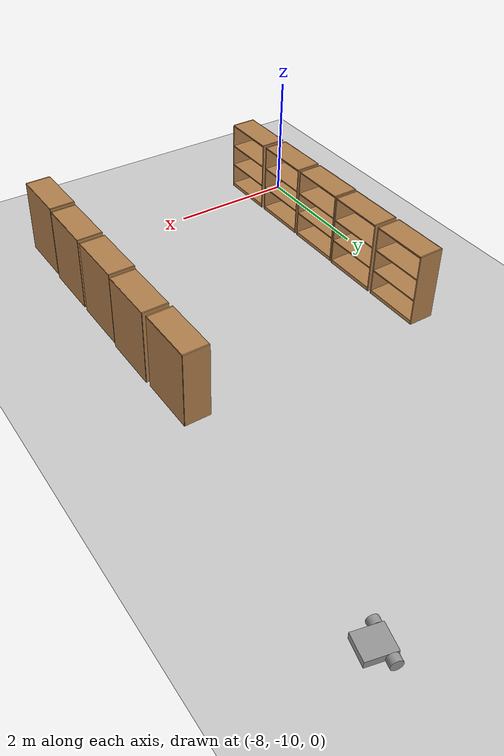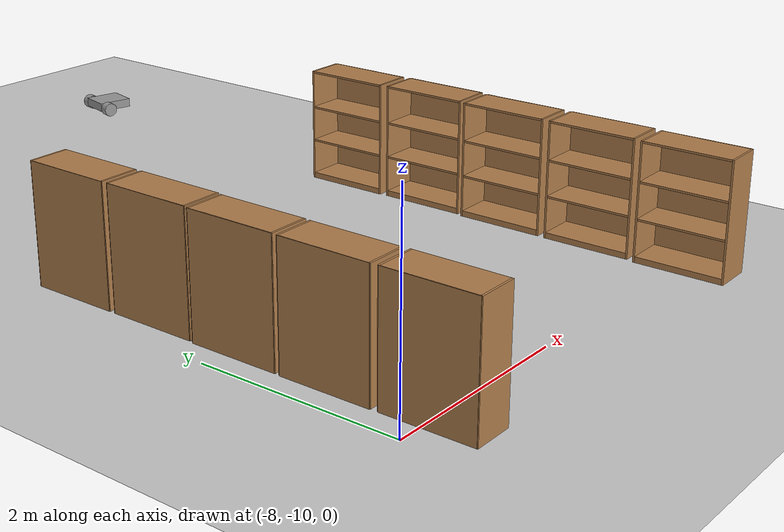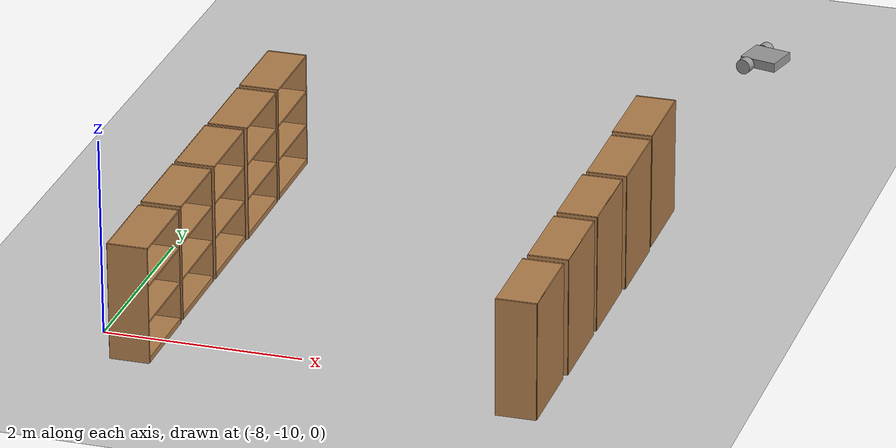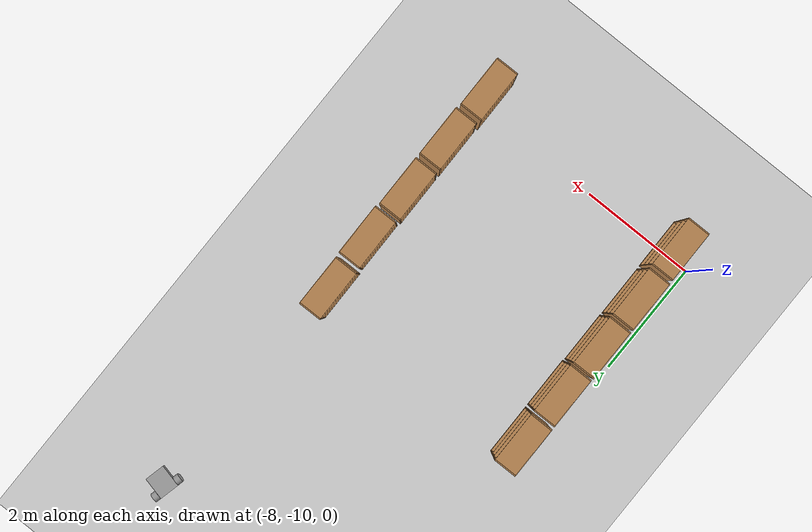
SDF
<sdf version="1.6">
 <world name="default">
  <model name="ground_plane">
   <static>1</static>
   <link name="link">
    <collision name="collision">
     <geometry><plane><normal>0 0 1</normal><size>100 100</size></plane></geometry>
     <surface>
      <contact><collide_bitmask>65535</collide_bitmask></contact>
      <friction><ode><mu>100</mu><mu2>50</mu2></ode></friction>
     </surface>
    </collision>
    <visual name="visual">
     <cast_shadows>0</cast_shadows>
     <geometry><plane><normal>0 0 1</normal><size>100 100</size></plane></geometry>
     <material>
      <script><uri>file://media/materials/scripts/gazebo.material</uri><name>Gazebo/Grey</name></script>
     </material>
    </visual>
   </link>
  </model>
  <model name="CasterWheelRobot">
   <link name="link_2">
    <pose>0.03 0 0.025 0 -0 0</pose>
    <inertial>
     <mass>0.0155432</mass>
     <inertia>
      <ixx>0.0001924</ixx>
      <ixy>0</ixy>
      <ixz>0</ixz>
      <iyy>0.0002189</iyy>
      <iyz>0</iyz>
      <izz>0.00038243</izz>
     </inertia>
    </inertial>
    <visual name="visual">
     <geometry><box><size>0.4 0.35 0.1</size></box></geometry>
     <material>
      <lighting>1</lighting>
      <script><uri>file://media/materials/scripts/gazebo.material</uri><name>Gazebo/Grey</name></script>
      <shader type="pixel"><normal_map>__default__</normal_map></shader>
      <ambient>0.3 0.3 0.3 1</ambient>
      <diffuse>0.7 0.7 0.7 1</diffuse>
      <specular>0.01 0.01 0.01 1</specular>
      <emissive>0 0 0 1</emissive>
     </material>
    </visual>
    <collision name="collision">
     <geometry><box><size>0.4 0.35 0.1</size></box></geometry>
     <surface>
      <friction>
       <ode><mu>1</mu><mu2>1</mu2><fdir1>0 0 0</fdir1><slip1>0</slip1><slip2>0</slip2></ode>
       <torsional>
        <coefficient>1</coefficient>
        <patch_radius>0</patch_radius>
        <surface_radius>0</surface_radius>
        <use_patch_radius>1</use_patch_radius>
        <ode><slip>0</slip></ode>
       </torsional>
      </friction>
      <bounce><restitution_coefficient>0</restitution_coefficient><threshold>1e+06</threshold></bounce>
      <contact>
       <collide_without_contact>0</collide_without_contact>
       <collide_without_contact_bitmask>1</collide_without_contact_bitmask>
       <collide_bitmask>1</collide_bitmask>
       <ode>
        <soft_cfm>0</soft_cfm>
        <soft_erp>0.2</soft_erp>
        <kp>1e+13</kp>
        <kd>1</kd>
        <max_vel>0.01</max_vel>
        <min_depth>0</min_depth>
       </ode>
       <bullet>
        <split_impulse>1</split_impulse>
        <split_impulse_penetration_threshold>-0.01</split_impulse_penetration_threshold>
        <soft_cfm>0</soft_cfm>
        <soft_erp>0.2</soft_erp>
        <kp>1e+13</kp>
        <kd>1</kd>
       </bullet>
      </contact>
     </surface>
    </collision>
   </link>
   <link name="link_3">
    <pose>-0.09 -0.225013 0.005 1.5707 -0 0</pose>
    <inertial>
     <mass>1</mass>
     <inertia><ixx>0.145833</ixx><ixy>0</ixy><ixz>0</ixz><iyy>0.145833</iyy><iyz>0</iyz><izz>0.125</izz></inertia>
    </inertial>
    <visual name="visual">
     <geometry><cylinder><radius>0.08</radius><length>0.1</length></cylinder></geometry>
     <material>
      <lighting>1</lighting>
      <script><uri>file://media/materials/scripts/gazebo.material</uri><name>Gazebo/Grey</name></script>
      <shader type="pixel"><normal_map>__default__</normal_map></shader>
      <ambient>0.3 0.3 0.3 1</ambient>
      <diffuse>0.7 0.7 0.7 1</diffuse>
      <specular>0.01 0.01 0.01 1</specular>
      <emissive>0 0 0 1</emissive>
     </material>
    </visual>
    <collision name="collision">
     <geometry><cylinder><radius>0.08</radius><length>0.1</length></cylinder></geometry>
     <surface>
      <friction>
       <ode><mu>1</mu><mu2>1</mu2><fdir1>0 0 0</fdir1><slip1>0</slip1><slip2>0</slip2></ode>
       <torsional>
        <coefficient>1</coefficient>
        <patch_radius>0</patch_radius>
        <surface_radius>0</surface_radius>
        <use_patch_radius>1</use_patch_radius>
        <ode><slip>0</slip></ode>
       </torsional>
      </friction>
      <bounce><restitution_coefficient>0</restitution_coefficient><threshold>1e+06</threshold></bounce>
      <contact>
       <collide_without_contact>0</collide_without_contact>
       <collide_without_contact_bitmask>1</collide_without_contact_bitmask>
       <collide_bitmask>1</collide_bitmask>
       <ode>
        <soft_cfm>0</soft_cfm>
        <soft_erp>0.2</soft_erp>
        <kp>1e+13</kp>
        <kd>1</kd>
        <max_vel>0.01</max_vel>
        <min_depth>0</min_depth>
       </ode>
       <bullet>
        <split_impulse>1</split_impulse>
        <split_impulse_penetration_threshold>-0.01</split_impulse_penetration_threshold>
        <soft_cfm>0</soft_cfm>
        <soft_erp>0.2</soft_erp>
        <kp>1e+13</kp>
        <kd>1</kd>
       </bullet>
      </contact>
     </surface>
    </collision>
   </link>
   <link name="link_3_clone">
    <pose>-0.09 0.225008 0.005 -1.5707 0 0</pose>
    <inertial>
     <mass>1</mass>
     <inertia><ixx>0.145833</ixx><ixy>0</ixy><ixz>0</ixz><iyy>0.145833</iyy><iyz>0</iyz><izz>0.125</izz></inertia>
    </inertial>
    <visual name="visual">
     <geometry><cylinder><radius>0.08</radius><length>0.1</length></cylinder></geometry>
     <material>
      <lighting>1</lighting>
      <script><uri>file://media/materials/scripts/gazebo.material</uri><name>Gazebo/Grey</name></script>
      <shader type="pixel"><normal_map>__default__</normal_map></shader>
      <ambient>0.3 0.3 0.3 1</ambient>
      <diffuse>0.7 0.7 0.7 1</diffuse>
      <specular>0.01 0.01 0.01 1</specular>
      <emissive>0 0 0 1</emissive>
     </material>
    </visual>
    <collision name="collision">
     <geometry><cylinder><radius>0.08</radius><length>0.1</length></cylinder></geometry>
     <surface>
      <friction>
       <ode><mu>1</mu><mu2>1</mu2><fdir1>0 0 0</fdir1><slip1>0</slip1><slip2>0</slip2></ode>
       <torsional>
        <coefficient>1</coefficient>
        <patch_radius>0</patch_radius>
        <surface_radius>0</surface_radius>
        <use_patch_radius>1</use_patch_radius>
        <ode><slip>0</slip></ode>
       </torsional>
      </friction>
      <bounce><restitution_coefficient>0</restitution_coefficient><threshold>1e+06</threshold></bounce>
      <contact>
       <collide_without_contact>0</collide_without_contact>
       <collide_without_contact_bitmask>1</collide_without_contact_bitmask>
       <collide_bitmask>1</collide_bitmask>
       <ode>
        <soft_cfm>0</soft_cfm>
        <soft_erp>0.2</soft_erp>
        <kp>1e+13</kp>
        <kd>1</kd>
        <max_vel>0.01</max_vel>
        <min_depth>0</min_depth>
       </ode>
       <bullet>
        <split_impulse>1</split_impulse>
        <split_impulse_penetration_threshold>-0.01</split_impulse_penetration_threshold>
        <soft_cfm>0</soft_cfm>
        <soft_erp>0.2</soft_erp>
        <kp>1e+13</kp>
        <kd>1</kd>
       </bullet>
      </contact>
     </surface>
    </collision>
   </link>
   <link name="link_4">
    <pose>0.15 0 -0.035 0 -0 0</pose>
    <inertial>
     <mass>0.00336129</mass>
     <inertia>
      <ixx>7.54e-06</ixx>
      <ixy>0</ixy>
      <ixz>0</ixz>
      <iyy>7.54e-06</iyy>
      <iyz>0</iyz>
      <izz>7.54e-06</izz>
     </inertia>
    </inertial>
    <visual name="visual">
     <geometry><sphere><radius>0.04</radius></sphere></geometry>
     <material>
      <lighting>1</lighting>
      <script><uri>file://media/materials/scripts/gazebo.material</uri><name>Gazebo/Grey</name></script>
      <shader type="pixel"><normal_map>__default__</normal_map></shader>
      <ambient>0.3 0.3 0.3 1</ambient>
      <diffuse>0.7 0.7 0.7 1</diffuse>
      <specular>0.01 0.01 0.01 1</specular>
      <emissive>0 0 0 1</emissive>
     </material>
    </visual>
    <collision name="collision">
     <geometry><sphere><radius>0.04</radius></sphere></geometry>
     <surface>
      <friction>
       <ode><mu>1</mu><mu2>1</mu2><fdir1>0 0 0</fdir1><slip1>0</slip1><slip2>0</slip2></ode>
       <torsional>
        <coefficient>1</coefficient>
        <patch_radius>0</patch_radius>
        <surface_radius>0</surface_radius>
        <use_patch_radius>1</use_patch_radius>
        <ode><slip>0</slip></ode>
       </torsional>
      </friction>
      <bounce><restitution_coefficient>0</restitution_coefficient><threshold>1e+06</threshold></bounce>
      <contact>
       <collide_without_contact>0</collide_without_contact>
       <collide_without_contact_bitmask>1</collide_without_contact_bitmask>
       <collide_bitmask>1</collide_bitmask>
       <ode>
        <soft_cfm>0</soft_cfm>
        <soft_erp>0.2</soft_erp>
        <kp>1e+13</kp>
        <kd>1</kd>
        <max_vel>0.01</max_vel>
        <min_depth>0</min_depth>
       </ode>
       <bullet>
        <split_impulse>1</split_impulse>
        <split_impulse_penetration_threshold>-0.01</split_impulse_penetration_threshold>
        <soft_cfm>0</soft_cfm>
        <soft_erp>0.2</soft_erp>
        <kp>1e+13</kp>
        <kd>1</kd>
       </bullet>
      </contact>
     </surface>
    </collision>
   </link>
   <joint name="link_2_JOINT_10" type="ball">
    <parent>link_2</parent>
    <child>link_4</child>
    <physics>
     <ode><limit><cfm>0</cfm><erp>0.2</erp></limit><suspension><cfm>0</cfm><erp>0.2</erp></suspension></ode>
    </physics>
   </joint>
   <joint name="link_2_JOINT_8" type="revolute">
    <parent>link_2</parent>
    <child>link_3</child>
    <axis>
     <xyz>0 0 1</xyz>
     <use_parent_model_frame>0</use_parent_model_frame>
     <limit>
      <lower>-1.79769e+308</lower>
      <upper>1.79769e+308</upper>
      <effort>-1</effort>
      <velocity>-1</velocity>
     </limit>
     <dynamics>
      <spring_reference>0</spring_reference>
      <spring_stiffness>0</spring_stiffness>
      <damping>0</damping>
     </dynamics>
    </axis>
    <physics>
     <ode><limit><cfm>0</cfm><erp>0.2</erp></limit><suspension><cfm>0</cfm><erp>0.2</erp></suspension></ode>
    </physics>
   </joint>
   <joint name="link_2_JOINT_9" type="revolute">
    <parent>link_2</parent>
    <child>link_3_clone</child>
    <axis>
     <xyz>0 0 1</xyz>
     <use_parent_model_frame>0</use_parent_model_frame>
     <limit>
      <lower>-1.79769e+308</lower>
      <upper>1.79769e+308</upper>
      <effort>-1</effort>
      <velocity>-1</velocity>
     </limit>
     <dynamics>
      <spring_reference>0</spring_reference>
      <spring_stiffness>0</spring_stiffness>
      <damping>0</damping>
     </dynamics>
    </axis>
    <physics>
     <ode><limit><cfm>0</cfm><erp>0.2</erp></limit><suspension><cfm>0</cfm><erp>0.2</erp></suspension></ode>
    </physics>
   </joint>
   <static>0</static>
   <pose>-3.57014 -2.00441 0.074992 5.2e-05 -5.5e-05 -0.233036</pose>
  </model>
  <model name="bookshelf">
   <static>1</static>
   <link name="link">
    <inertial><mass>1</mass></inertial>
    <collision name="back">
     <pose>0 0.005 0.6 0 -0 0</pose>
     <geometry><box><size>0.9 0.01 1.2</size></box></geometry>
    </collision>
    <visual name="visual1">
     <pose>0 0.005 0.6 0 -0 0</pose>
     <geometry><box><size>0.9 0.01 1.2</size></box></geometry>
     <material>
      <script><uri>file://media/materials/scripts/gazebo.material</uri><name>Gazebo/Wood</name></script>
     </material>
    </visual>
    <collision name="left_side">
     <pose>0.45 -0.195 0.6 0 -0 0</pose>
     <geometry><box><size>0.02 0.4 1.2</size></box></geometry>
    </collision>
    <visual name="visual2">
     <pose>0.45 -0.195 0.6 0 -0 0</pose>
     <geometry><box><size>0.02 0.4 1.2</size></box></geometry>
     <material>
      <script><uri>file://media/materials/scripts/gazebo.material</uri><name>Gazebo/Wood</name></script>
     </material>
    </visual>
    <collision name="right_side">
     <pose>-0.45 -0.195 0.6 0 -0 0</pose>
     <geometry><box><size>0.02 0.4 1.2</size></box></geometry>
    </collision>
    <visual name="visual3">
     <pose>-0.45 -0.195 0.6 0 -0 0</pose>
     <geometry><box><size>0.02 0.4 1.2</size></box></geometry>
     <material>
      <script><uri>file://media/materials/scripts/gazebo.material</uri><name>Gazebo/Wood</name></script>
     </material>
    </visual>
    <collision name="bottom">
     <pose>0 -0.195 0.03 0 -0 0</pose>
     <geometry><box><size>0.88 0.4 0.06</size></box></geometry>
    </collision>
    <visual name="visual4">
     <pose>0 -0.195 0.03 0 -0 0</pose>
     <geometry><box><size>0.88 0.4 0.06</size></box></geometry>
     <material>
      <script><uri>file://media/materials/scripts/gazebo.material</uri><name>Gazebo/Wood</name></script>
     </material>
    </visual>
    <collision name="top">
     <pose>0 -0.195 1.19 0 -0 0</pose>
     <geometry><box><size>0.88 0.4 0.02</size></box></geometry>
    </collision>
    <visual name="visual5">
     <pose>0 -0.195 1.19 0 -0 0</pose>
     <geometry><box><size>0.88 0.4 0.02</size></box></geometry>
     <material>
      <script><uri>file://media/materials/scripts/gazebo.material</uri><name>Gazebo/Wood</name></script>
     </material>
    </visual>
    <collision name="low_shelf">
     <pose>0 -0.195 0.43 0 -0 0</pose>
     <geometry><box><size>0.88 0.4 0.02</size></box></geometry>
    </collision>
    <visual name="visual6">
     <pose>0 -0.195 0.43 0 -0 0</pose>
     <geometry><box><size>0.88 0.4 0.02</size></box></geometry>
     <material>
      <script><uri>file://media/materials/scripts/gazebo.material</uri><name>Gazebo/Wood</name></script>
     </material>
    </visual>
    <collision name="high_shelf">
     <pose>0 -0.195 0.8 0 -0 0</pose>
     <geometry><box><size>0.88 0.4 0.02</size></box></geometry>
    </collision>
    <visual name="visual7">
     <pose>0 -0.195 0.8 0 -0 0</pose>
     <geometry><box><size>0.88 0.4 0.02</size></box></geometry>
     <material>
      <script><uri>file://media/materials/scripts/gazebo.material</uri><name>Gazebo/Wood</name></script>
     </material>
    </visual>
   </link>
   <pose>-7.75833 -6.19747 0 0 -0 1.57639</pose>
  </model>
  <model name="bookshelf_clone">
   <static>1</static>
   <link name="link">
    <inertial><mass>1</mass></inertial>
    <collision name="back">
     <pose>0 0.005 0.6 0 -0 0</pose>
     <geometry><box><size>0.9 0.01 1.2</size></box></geometry>
    </collision>
    <visual name="visual1">
     <pose>0 0.005 0.6 0 -0 0</pose>
     <geometry><box><size>0.9 0.01 1.2</size></box></geometry>
     <material>
      <script><uri>file://media/materials/scripts/gazebo.material</uri><name>Gazebo/Wood</name></script>
     </material>
    </visual>
    <collision name="left_side">
     <pose>0.45 -0.195 0.6 0 -0 0</pose>
     <geometry><box><size>0.02 0.4 1.2</size></box></geometry>
    </collision>
    <visual name="visual2">
     <pose>0.45 -0.195 0.6 0 -0 0</pose>
     <geometry><box><size>0.02 0.4 1.2</size></box></geometry>
     <material>
      <script><uri>file://media/materials/scripts/gazebo.material</uri><name>Gazebo/Wood</name></script>
     </material>
    </visual>
    <collision name="right_side">
     <pose>-0.45 -0.195 0.6 0 -0 0</pose>
     <geometry><box><size>0.02 0.4 1.2</size></box></geometry>
    </collision>
    <visual name="visual3">
     <pose>-0.45 -0.195 0.6 0 -0 0</pose>
     <geometry><box><size>0.02 0.4 1.2</size></box></geometry>
     <material>
      <script><uri>file://media/materials/scripts/gazebo.material</uri><name>Gazebo/Wood</name></script>
     </material>
    </visual>
    <collision name="bottom">
     <pose>0 -0.195 0.03 0 -0 0</pose>
     <geometry><box><size>0.88 0.4 0.06</size></box></geometry>
    </collision>
    <visual name="visual4">
     <pose>0 -0.195 0.03 0 -0 0</pose>
     <geometry><box><size>0.88 0.4 0.06</size></box></geometry>
     <material>
      <script><uri>file://media/materials/scripts/gazebo.material</uri><name>Gazebo/Wood</name></script>
     </material>
    </visual>
    <collision name="top">
     <pose>0 -0.195 1.19 0 -0 0</pose>
     <geometry><box><size>0.88 0.4 0.02</size></box></geometry>
    </collision>
    <visual name="visual5">
     <pose>0 -0.195 1.19 0 -0 0</pose>
     <geometry><box><size>0.88 0.4 0.02</size></box></geometry>
     <material>
      <script><uri>file://media/materials/scripts/gazebo.material</uri><name>Gazebo/Wood</name></script>
     </material>
    </visual>
    <collision name="low_shelf">
     <pose>0 -0.195 0.43 0 -0 0</pose>
     <geometry><box><size>0.88 0.4 0.02</size></box></geometry>
    </collision>
    <visual name="visual6">
     <pose>0 -0.195 0.43 0 -0 0</pose>
     <geometry><box><size>0.88 0.4 0.02</size></box></geometry>
     <material>
      <script><uri>file://media/materials/scripts/gazebo.material</uri><name>Gazebo/Wood</name></script>
     </material>
    </visual>
    <collision name="high_shelf">
     <pose>0 -0.195 0.8 0 -0 0</pose>
     <geometry><box><size>0.88 0.4 0.02</size></box></geometry>
    </collision>
    <visual name="visual7">
     <pose>0 -0.195 0.8 0 -0 0</pose>
     <geometry><box><size>0.88 0.4 0.02</size></box></geometry>
     <material>
      <script><uri>file://media/materials/scripts/gazebo.material</uri><name>Gazebo/Wood</name></script>
     </material>
    </visual>
   </link>
   <pose>-7.75086 -7.16713 0 0 -0 1.57639</pose>
  </model>
  <model name="bookshelf_clone_0">
   <static>1</static>
   <link name="link">
    <inertial><mass>1</mass></inertial>
    <collision name="back">
     <pose>0 0.005 0.6 0 -0 0</pose>
     <geometry><box><size>0.9 0.01 1.2</size></box></geometry>
    </collision>
    <visual name="visual1">
     <pose>0 0.005 0.6 0 -0 0</pose>
     <geometry><box><size>0.9 0.01 1.2</size></box></geometry>
     <material>
      <script><uri>file://media/materials/scripts/gazebo.material</uri><name>Gazebo/Wood</name></script>
     </material>
    </visual>
    <collision name="left_side">
     <pose>0.45 -0.195 0.6 0 -0 0</pose>
     <geometry><box><size>0.02 0.4 1.2</size></box></geometry>
    </collision>
    <visual name="visual2">
     <pose>0.45 -0.195 0.6 0 -0 0</pose>
     <geometry><box><size>0.02 0.4 1.2</size></box></geometry>
     <material>
      <script><uri>file://media/materials/scripts/gazebo.material</uri><name>Gazebo/Wood</name></script>
     </material>
    </visual>
    <collision name="right_side">
     <pose>-0.45 -0.195 0.6 0 -0 0</pose>
     <geometry><box><size>0.02 0.4 1.2</size></box></geometry>
    </collision>
    <visual name="visual3">
     <pose>-0.45 -0.195 0.6 0 -0 0</pose>
     <geometry><box><size>0.02 0.4 1.2</size></box></geometry>
     <material>
      <script><uri>file://media/materials/scripts/gazebo.material</uri><name>Gazebo/Wood</name></script>
     </material>
    </visual>
    <collision name="bottom">
     <pose>0 -0.195 0.03 0 -0 0</pose>
     <geometry><box><size>0.88 0.4 0.06</size></box></geometry>
    </collision>
    <visual name="visual4">
     <pose>0 -0.195 0.03 0 -0 0</pose>
     <geometry><box><size>0.88 0.4 0.06</size></box></geometry>
     <material>
      <script><uri>file://media/materials/scripts/gazebo.material</uri><name>Gazebo/Wood</name></script>
     </material>
    </visual>
    <collision name="top">
     <pose>0 -0.195 1.19 0 -0 0</pose>
     <geometry><box><size>0.88 0.4 0.02</size></box></geometry>
    </collision>
    <visual name="visual5">
     <pose>0 -0.195 1.19 0 -0 0</pose>
     <geometry><box><size>0.88 0.4 0.02</size></box></geometry>
     <material>
      <script><uri>file://media/materials/scripts/gazebo.material</uri><name>Gazebo/Wood</name></script>
     </material>
    </visual>
    <collision name="low_shelf">
     <pose>0 -0.195 0.43 0 -0 0</pose>
     <geometry><box><size>0.88 0.4 0.02</size></box></geometry>
    </collision>
    <visual name="visual6">
     <pose>0 -0.195 0.43 0 -0 0</pose>
     <geometry><box><size>0.88 0.4 0.02</size></box></geometry>
     <material>
      <script><uri>file://media/materials/scripts/gazebo.material</uri><name>Gazebo/Wood</name></script>
     </material>
    </visual>
    <collision name="high_shelf">
     <pose>0 -0.195 0.8 0 -0 0</pose>
     <geometry><box><size>0.88 0.4 0.02</size></box></geometry>
    </collision>
    <visual name="visual7">
     <pose>0 -0.195 0.8 0 -0 0</pose>
     <geometry><box><size>0.88 0.4 0.02</size></box></geometry>
     <material>
      <script><uri>file://media/materials/scripts/gazebo.material</uri><name>Gazebo/Wood</name></script>
     </material>
    </visual>
   </link>
   <pose>-7.75922 -8.11903 0 0 -0 1.57639</pose>
  </model>
  <model name="bookshelf_clone_1">
   <static>1</static>
   <link name="link">
    <inertial><mass>1</mass></inertial>
    <collision name="back">
     <pose>0 0.005 0.6 0 -0 0</pose>
     <geometry><box><size>0.9 0.01 1.2</size></box></geometry>
    </collision>
    <visual name="visual1">
     <pose>0 0.005 0.6 0 -0 0</pose>
     <geometry><box><size>0.9 0.01 1.2</size></box></geometry>
     <material>
      <script><uri>file://media/materials/scripts/gazebo.material</uri><name>Gazebo/Wood</name></script>
     </material>
    </visual>
    <collision name="left_side">
     <pose>0.45 -0.195 0.6 0 -0 0</pose>
     <geometry><box><size>0.02 0.4 1.2</size></box></geometry>
    </collision>
    <visual name="visual2">
     <pose>0.45 -0.195 0.6 0 -0 0</pose>
     <geometry><box><size>0.02 0.4 1.2</size></box></geometry>
     <material>
      <script><uri>file://media/materials/scripts/gazebo.material</uri><name>Gazebo/Wood</name></script>
     </material>
    </visual>
    <collision name="right_side">
     <pose>-0.45 -0.195 0.6 0 -0 0</pose>
     <geometry><box><size>0.02 0.4 1.2</size></box></geometry>
    </collision>
    <visual name="visual3">
     <pose>-0.45 -0.195 0.6 0 -0 0</pose>
     <geometry><box><size>0.02 0.4 1.2</size></box></geometry>
     <material>
      <script><uri>file://media/materials/scripts/gazebo.material</uri><name>Gazebo/Wood</name></script>
     </material>
    </visual>
    <collision name="bottom">
     <pose>0 -0.195 0.03 0 -0 0</pose>
     <geometry><box><size>0.88 0.4 0.06</size></box></geometry>
    </collision>
    <visual name="visual4">
     <pose>0 -0.195 0.03 0 -0 0</pose>
     <geometry><box><size>0.88 0.4 0.06</size></box></geometry>
     <material>
      <script><uri>file://media/materials/scripts/gazebo.material</uri><name>Gazebo/Wood</name></script>
     </material>
    </visual>
    <collision name="top">
     <pose>0 -0.195 1.19 0 -0 0</pose>
     <geometry><box><size>0.88 0.4 0.02</size></box></geometry>
    </collision>
    <visual name="visual5">
     <pose>0 -0.195 1.19 0 -0 0</pose>
     <geometry><box><size>0.88 0.4 0.02</size></box></geometry>
     <material>
      <script><uri>file://media/materials/scripts/gazebo.material</uri><name>Gazebo/Wood</name></script>
     </material>
    </visual>
    <collision name="low_shelf">
     <pose>0 -0.195 0.43 0 -0 0</pose>
     <geometry><box><size>0.88 0.4 0.02</size></box></geometry>
    </collision>
    <visual name="visual6">
     <pose>0 -0.195 0.43 0 -0 0</pose>
     <geometry><box><size>0.88 0.4 0.02</size></box></geometry>
     <material>
      <script><uri>file://media/materials/scripts/gazebo.material</uri><name>Gazebo/Wood</name></script>
     </material>
    </visual>
    <collision name="high_shelf">
     <pose>0 -0.195 0.8 0 -0 0</pose>
     <geometry><box><size>0.88 0.4 0.02</size></box></geometry>
    </collision>
    <visual name="visual7">
     <pose>0 -0.195 0.8 0 -0 0</pose>
     <geometry><box><size>0.88 0.4 0.02</size></box></geometry>
     <material>
      <script><uri>file://media/materials/scripts/gazebo.material</uri><name>Gazebo/Wood</name></script>
     </material>
    </visual>
   </link>
   <pose>-7.75953 -9.08023 0 0 -0 1.57639</pose>
  </model>
  <model name="bookshelf_clone_2">
   <static>1</static>
   <link name="link">
    <inertial><mass>1</mass></inertial>
    <collision name="back">
     <pose>0 0.005 0.6 0 -0 0</pose>
     <geometry><box><size>0.9 0.01 1.2</size></box></geometry>
    </collision>
    <visual name="visual1">
     <pose>0 0.005 0.6 0 -0 0</pose>
     <geometry><box><size>0.9 0.01 1.2</size></box></geometry>
     <material>
      <script><uri>file://media/materials/scripts/gazebo.material</uri><name>Gazebo/Wood</name></script>
     </material>
    </visual>
    <collision name="left_side">
     <pose>0.45 -0.195 0.6 0 -0 0</pose>
     <geometry><box><size>0.02 0.4 1.2</size></box></geometry>
    </collision>
    <visual name="visual2">
     <pose>0.45 -0.195 0.6 0 -0 0</pose>
     <geometry><box><size>0.02 0.4 1.2</size></box></geometry>
     <material>
      <script><uri>file://media/materials/scripts/gazebo.material</uri><name>Gazebo/Wood</name></script>
     </material>
    </visual>
    <collision name="right_side">
     <pose>-0.45 -0.195 0.6 0 -0 0</pose>
     <geometry><box><size>0.02 0.4 1.2</size></box></geometry>
    </collision>
    <visual name="visual3">
     <pose>-0.45 -0.195 0.6 0 -0 0</pose>
     <geometry><box><size>0.02 0.4 1.2</size></box></geometry>
     <material>
      <script><uri>file://media/materials/scripts/gazebo.material</uri><name>Gazebo/Wood</name></script>
     </material>
    </visual>
    <collision name="bottom">
     <pose>0 -0.195 0.03 0 -0 0</pose>
     <geometry><box><size>0.88 0.4 0.06</size></box></geometry>
    </collision>
    <visual name="visual4">
     <pose>0 -0.195 0.03 0 -0 0</pose>
     <geometry><box><size>0.88 0.4 0.06</size></box></geometry>
     <material>
      <script><uri>file://media/materials/scripts/gazebo.material</uri><name>Gazebo/Wood</name></script>
     </material>
    </visual>
    <collision name="top">
     <pose>0 -0.195 1.19 0 -0 0</pose>
     <geometry><box><size>0.88 0.4 0.02</size></box></geometry>
    </collision>
    <visual name="visual5">
     <pose>0 -0.195 1.19 0 -0 0</pose>
     <geometry><box><size>0.88 0.4 0.02</size></box></geometry>
     <material>
      <script><uri>file://media/materials/scripts/gazebo.material</uri><name>Gazebo/Wood</name></script>
     </material>
    </visual>
    <collision name="low_shelf">
     <pose>0 -0.195 0.43 0 -0 0</pose>
     <geometry><box><size>0.88 0.4 0.02</size></box></geometry>
    </collision>
    <visual name="visual6">
     <pose>0 -0.195 0.43 0 -0 0</pose>
     <geometry><box><size>0.88 0.4 0.02</size></box></geometry>
     <material>
      <script><uri>file://media/materials/scripts/gazebo.material</uri><name>Gazebo/Wood</name></script>
     </material>
    </visual>
    <collision name="high_shelf">
     <pose>0 -0.195 0.8 0 -0 0</pose>
     <geometry><box><size>0.88 0.4 0.02</size></box></geometry>
    </collision>
    <visual name="visual7">
     <pose>0 -0.195 0.8 0 -0 0</pose>
     <geometry><box><size>0.88 0.4 0.02</size></box></geometry>
     <material>
      <script><uri>file://media/materials/scripts/gazebo.material</uri><name>Gazebo/Wood</name></script>
     </material>
    </visual>
   </link>
   <pose>-7.74846 -10.0576 0 0 -0 1.57639</pose>
  </model>
  <model name="bookshelf_0_clone_3">
   <static>1</static>
   <link name="link">
    <inertial><mass>1</mass></inertial>
    <collision name="back">
     <pose>0 0.005 0.6 0 -0 0</pose>
     <geometry><box><size>0.9 0.01 1.2</size></box></geometry>
    </collision>
    <visual name="visual1">
     <pose>0 0.005 0.6 0 -0 0</pose>
     <geometry><box><size>0.9 0.01 1.2</size></box></geometry>
     <material>
      <script><uri>file://media/materials/scripts/gazebo.material</uri><name>Gazebo/Wood</name></script>
     </material>
    </visual>
    <collision name="left_side">
     <pose>0.45 -0.195 0.6 0 -0 0</pose>
     <geometry><box><size>0.02 0.4 1.2</size></box></geometry>
    </collision>
    <visual name="visual2">
     <pose>0.45 -0.195 0.6 0 -0 0</pose>
     <geometry><box><size>0.02 0.4 1.2</size></box></geometry>
     <material>
      <script><uri>file://media/materials/scripts/gazebo.material</uri><name>Gazebo/Wood</name></script>
     </material>
    </visual>
    <collision name="right_side">
     <pose>-0.45 -0.195 0.6 0 -0 0</pose>
     <geometry><box><size>0.02 0.4 1.2</size></box></geometry>
    </collision>
    <visual name="visual3">
     <pose>-0.45 -0.195 0.6 0 -0 0</pose>
     <geometry><box><size>0.02 0.4 1.2</size></box></geometry>
     <material>
      <script><uri>file://media/materials/scripts/gazebo.material</uri><name>Gazebo/Wood</name></script>
     </material>
    </visual>
    <collision name="bottom">
     <pose>0 -0.195 0.03 0 -0 0</pose>
     <geometry><box><size>0.88 0.4 0.06</size></box></geometry>
    </collision>
    <visual name="visual4">
     <pose>0 -0.195 0.03 0 -0 0</pose>
     <geometry><box><size>0.88 0.4 0.06</size></box></geometry>
     <material>
      <script><uri>file://media/materials/scripts/gazebo.material</uri><name>Gazebo/Wood</name></script>
     </material>
    </visual>
    <collision name="top">
     <pose>0 -0.195 1.19 0 -0 0</pose>
     <geometry><box><size>0.88 0.4 0.02</size></box></geometry>
    </collision>
    <visual name="visual5">
     <pose>0 -0.195 1.19 0 -0 0</pose>
     <geometry><box><size>0.88 0.4 0.02</size></box></geometry>
     <material>
      <script><uri>file://media/materials/scripts/gazebo.material</uri><name>Gazebo/Wood</name></script>
     </material>
    </visual>
    <collision name="low_shelf">
     <pose>0 -0.195 0.43 0 -0 0</pose>
     <geometry><box><size>0.88 0.4 0.02</size></box></geometry>
    </collision>
    <visual name="visual6">
     <pose>0 -0.195 0.43 0 -0 0</pose>
     <geometry><box><size>0.88 0.4 0.02</size></box></geometry>
     <material>
      <script><uri>file://media/materials/scripts/gazebo.material</uri><name>Gazebo/Wood</name></script>
     </material>
    </visual>
    <collision name="high_shelf">
     <pose>0 -0.195 0.8 0 -0 0</pose>
     <geometry><box><size>0.88 0.4 0.02</size></box></geometry>
    </collision>
    <visual name="visual7">
     <pose>0 -0.195 0.8 0 -0 0</pose>
     <geometry><box><size>0.88 0.4 0.02</size></box></geometry>
     <material>
      <script><uri>file://media/materials/scripts/gazebo.material</uri><name>Gazebo/Wood</name></script>
     </material>
    </visual>
   </link>
   <pose>-3.51852 -6.18224 0 0 0 -1.56185</pose>
  </model>
  <model name="bookshelf_0_clone_4">
   <static>1</static>
   <link name="link">
    <inertial><mass>1</mass></inertial>
    <collision name="back">
     <pose>0 0.005 0.6 0 -0 0</pose>
     <geometry><box><size>0.9 0.01 1.2</size></box></geometry>
    </collision>
    <visual name="visual1">
     <pose>0 0.005 0.6 0 -0 0</pose>
     <geometry><box><size>0.9 0.01 1.2</size></box></geometry>
     <material>
      <script><uri>file://media/materials/scripts/gazebo.material</uri><name>Gazebo/Wood</name></script>
     </material>
    </visual>
    <collision name="left_side">
     <pose>0.45 -0.195 0.6 0 -0 0</pose>
     <geometry><box><size>0.02 0.4 1.2</size></box></geometry>
    </collision>
    <visual name="visual2">
     <pose>0.45 -0.195 0.6 0 -0 0</pose>
     <geometry><box><size>0.02 0.4 1.2</size></box></geometry>
     <material>
      <script><uri>file://media/materials/scripts/gazebo.material</uri><name>Gazebo/Wood</name></script>
     </material>
    </visual>
    <collision name="right_side">
     <pose>-0.45 -0.195 0.6 0 -0 0</pose>
     <geometry><box><size>0.02 0.4 1.2</size></box></geometry>
    </collision>
    <visual name="visual3">
     <pose>-0.45 -0.195 0.6 0 -0 0</pose>
     <geometry><box><size>0.02 0.4 1.2</size></box></geometry>
     <material>
      <script><uri>file://media/materials/scripts/gazebo.material</uri><name>Gazebo/Wood</name></script>
     </material>
    </visual>
    <collision name="bottom">
     <pose>0 -0.195 0.03 0 -0 0</pose>
     <geometry><box><size>0.88 0.4 0.06</size></box></geometry>
    </collision>
    <visual name="visual4">
     <pose>0 -0.195 0.03 0 -0 0</pose>
     <geometry><box><size>0.88 0.4 0.06</size></box></geometry>
     <material>
      <script><uri>file://media/materials/scripts/gazebo.material</uri><name>Gazebo/Wood</name></script>
     </material>
    </visual>
    <collision name="top">
     <pose>0 -0.195 1.19 0 -0 0</pose>
     <geometry><box><size>0.88 0.4 0.02</size></box></geometry>
    </collision>
    <visual name="visual5">
     <pose>0 -0.195 1.19 0 -0 0</pose>
     <geometry><box><size>0.88 0.4 0.02</size></box></geometry>
     <material>
      <script><uri>file://media/materials/scripts/gazebo.material</uri><name>Gazebo/Wood</name></script>
     </material>
    </visual>
    <collision name="low_shelf">
     <pose>0 -0.195 0.43 0 -0 0</pose>
     <geometry><box><size>0.88 0.4 0.02</size></box></geometry>
    </collision>
    <visual name="visual6">
     <pose>0 -0.195 0.43 0 -0 0</pose>
     <geometry><box><size>0.88 0.4 0.02</size></box></geometry>
     <material>
      <script><uri>file://media/materials/scripts/gazebo.material</uri><name>Gazebo/Wood</name></script>
     </material>
    </visual>
    <collision name="high_shelf">
     <pose>0 -0.195 0.8 0 -0 0</pose>
     <geometry><box><size>0.88 0.4 0.02</size></box></geometry>
    </collision>
    <visual name="visual7">
     <pose>0 -0.195 0.8 0 -0 0</pose>
     <geometry><box><size>0.88 0.4 0.02</size></box></geometry>
     <material>
      <script><uri>file://media/materials/scripts/gazebo.material</uri><name>Gazebo/Wood</name></script>
     </material>
    </visual>
   </link>
   <pose>-3.49706 -7.17098 0 0 0 -1.56185</pose>
  </model>
  <model name="bookshelf_0_clone_5">
   <static>1</static>
   <link name="link">
    <inertial><mass>1</mass></inertial>
    <collision name="back">
     <pose>0 0.005 0.6 0 -0 0</pose>
     <geometry><box><size>0.9 0.01 1.2</size></box></geometry>
    </collision>
    <visual name="visual1">
     <pose>0 0.005 0.6 0 -0 0</pose>
     <geometry><box><size>0.9 0.01 1.2</size></box></geometry>
     <material>
      <script><uri>file://media/materials/scripts/gazebo.material</uri><name>Gazebo/Wood</name></script>
     </material>
    </visual>
    <collision name="left_side">
     <pose>0.45 -0.195 0.6 0 -0 0</pose>
     <geometry><box><size>0.02 0.4 1.2</size></box></geometry>
    </collision>
    <visual name="visual2">
     <pose>0.45 -0.195 0.6 0 -0 0</pose>
     <geometry><box><size>0.02 0.4 1.2</size></box></geometry>
     <material>
      <script><uri>file://media/materials/scripts/gazebo.material</uri><name>Gazebo/Wood</name></script>
     </material>
    </visual>
    <collision name="right_side">
     <pose>-0.45 -0.195 0.6 0 -0 0</pose>
     <geometry><box><size>0.02 0.4 1.2</size></box></geometry>
    </collision>
    <visual name="visual3">
     <pose>-0.45 -0.195 0.6 0 -0 0</pose>
     <geometry><box><size>0.02 0.4 1.2</size></box></geometry>
     <material>
      <script><uri>file://media/materials/scripts/gazebo.material</uri><name>Gazebo/Wood</name></script>
     </material>
    </visual>
    <collision name="bottom">
     <pose>0 -0.195 0.03 0 -0 0</pose>
     <geometry><box><size>0.88 0.4 0.06</size></box></geometry>
    </collision>
    <visual name="visual4">
     <pose>0 -0.195 0.03 0 -0 0</pose>
     <geometry><box><size>0.88 0.4 0.06</size></box></geometry>
     <material>
      <script><uri>file://media/materials/scripts/gazebo.material</uri><name>Gazebo/Wood</name></script>
     </material>
    </visual>
    <collision name="top">
     <pose>0 -0.195 1.19 0 -0 0</pose>
     <geometry><box><size>0.88 0.4 0.02</size></box></geometry>
    </collision>
    <visual name="visual5">
     <pose>0 -0.195 1.19 0 -0 0</pose>
     <geometry><box><size>0.88 0.4 0.02</size></box></geometry>
     <material>
      <script><uri>file://media/materials/scripts/gazebo.material</uri><name>Gazebo/Wood</name></script>
     </material>
    </visual>
    <collision name="low_shelf">
     <pose>0 -0.195 0.43 0 -0 0</pose>
     <geometry><box><size>0.88 0.4 0.02</size></box></geometry>
    </collision>
    <visual name="visual6">
     <pose>0 -0.195 0.43 0 -0 0</pose>
     <geometry><box><size>0.88 0.4 0.02</size></box></geometry>
     <material>
      <script><uri>file://media/materials/scripts/gazebo.material</uri><name>Gazebo/Wood</name></script>
     </material>
    </visual>
    <collision name="high_shelf">
     <pose>0 -0.195 0.8 0 -0 0</pose>
     <geometry><box><size>0.88 0.4 0.02</size></box></geometry>
    </collision>
    <visual name="visual7">
     <pose>0 -0.195 0.8 0 -0 0</pose>
     <geometry><box><size>0.88 0.4 0.02</size></box></geometry>
     <material>
      <script><uri>file://media/materials/scripts/gazebo.material</uri><name>Gazebo/Wood</name></script>
     </material>
    </visual>
   </link>
   <pose>-3.512 -8.14242 0 0 0 -1.56185</pose>
  </model>
  <model name="bookshelf_0_clone_6">
   <static>1</static>
   <link name="link">
    <inertial><mass>1</mass></inertial>
    <collision name="back">
     <pose>0 0.005 0.6 0 -0 0</pose>
     <geometry><box><size>0.9 0.01 1.2</size></box></geometry>
    </collision>
    <visual name="visual1">
     <pose>0 0.005 0.6 0 -0 0</pose>
     <geometry><box><size>0.9 0.01 1.2</size></box></geometry>
     <material>
      <script><uri>file://media/materials/scripts/gazebo.material</uri><name>Gazebo/Wood</name></script>
     </material>
    </visual>
    <collision name="left_side">
     <pose>0.45 -0.195 0.6 0 -0 0</pose>
     <geometry><box><size>0.02 0.4 1.2</size></box></geometry>
    </collision>
    <visual name="visual2">
     <pose>0.45 -0.195 0.6 0 -0 0</pose>
     <geometry><box><size>0.02 0.4 1.2</size></box></geometry>
     <material>
      <script><uri>file://media/materials/scripts/gazebo.material</uri><name>Gazebo/Wood</name></script>
     </material>
    </visual>
    <collision name="right_side">
     <pose>-0.45 -0.195 0.6 0 -0 0</pose>
     <geometry><box><size>0.02 0.4 1.2</size></box></geometry>
    </collision>
    <visual name="visual3">
     <pose>-0.45 -0.195 0.6 0 -0 0</pose>
     <geometry><box><size>0.02 0.4 1.2</size></box></geometry>
     <material>
      <script><uri>file://media/materials/scripts/gazebo.material</uri><name>Gazebo/Wood</name></script>
     </material>
    </visual>
    <collision name="bottom">
     <pose>0 -0.195 0.03 0 -0 0</pose>
     <geometry><box><size>0.88 0.4 0.06</size></box></geometry>
    </collision>
    <visual name="visual4">
     <pose>0 -0.195 0.03 0 -0 0</pose>
     <geometry><box><size>0.88 0.4 0.06</size></box></geometry>
     <material>
      <script><uri>file://media/materials/scripts/gazebo.material</uri><name>Gazebo/Wood</name></script>
     </material>
    </visual>
    <collision name="top">
     <pose>0 -0.195 1.19 0 -0 0</pose>
     <geometry><box><size>0.88 0.4 0.02</size></box></geometry>
    </collision>
    <visual name="visual5">
     <pose>0 -0.195 1.19 0 -0 0</pose>
     <geometry><box><size>0.88 0.4 0.02</size></box></geometry>
     <material>
      <script><uri>file://media/materials/scripts/gazebo.material</uri><name>Gazebo/Wood</name></script>
     </material>
    </visual>
    <collision name="low_shelf">
     <pose>0 -0.195 0.43 0 -0 0</pose>
     <geometry><box><size>0.88 0.4 0.02</size></box></geometry>
    </collision>
    <visual name="visual6">
     <pose>0 -0.195 0.43 0 -0 0</pose>
     <geometry><box><size>0.88 0.4 0.02</size></box></geometry>
     <material>
      <script><uri>file://media/materials/scripts/gazebo.material</uri><name>Gazebo/Wood</name></script>
     </material>
    </visual>
    <collision name="high_shelf">
     <pose>0 -0.195 0.8 0 -0 0</pose>
     <geometry><box><size>0.88 0.4 0.02</size></box></geometry>
    </collision>
    <visual name="visual7">
     <pose>0 -0.195 0.8 0 -0 0</pose>
     <geometry><box><size>0.88 0.4 0.02</size></box></geometry>
     <material>
      <script><uri>file://media/materials/scripts/gazebo.material</uri><name>Gazebo/Wood</name></script>
     </material>
    </visual>
   </link>
   <pose>-3.50855 -9.13112 0 0 0 -1.56185</pose>
  </model>
  <model name="bookshelf_0_clone_7">
   <static>1</static>
   <link name="link">
    <inertial><mass>1</mass></inertial>
    <collision name="back">
     <pose>0 0.005 0.6 0 -0 0</pose>
     <geometry><box><size>0.9 0.01 1.2</size></box></geometry>
    </collision>
    <visual name="visual1">
     <pose>0 0.005 0.6 0 -0 0</pose>
     <geometry><box><size>0.9 0.01 1.2</size></box></geometry>
     <material>
      <script><uri>file://media/materials/scripts/gazebo.material</uri><name>Gazebo/Wood</name></script>
     </material>
    </visual>
    <collision name="left_side">
     <pose>0.45 -0.195 0.6 0 -0 0</pose>
     <geometry><box><size>0.02 0.4 1.2</size></box></geometry>
    </collision>
    <visual name="visual2">
     <pose>0.45 -0.195 0.6 0 -0 0</pose>
     <geometry><box><size>0.02 0.4 1.2</size></box></geometry>
     <material>
      <script><uri>file://media/materials/scripts/gazebo.material</uri><name>Gazebo/Wood</name></script>
     </material>
    </visual>
    <collision name="right_side">
     <pose>-0.45 -0.195 0.6 0 -0 0</pose>
     <geometry><box><size>0.02 0.4 1.2</size></box></geometry>
    </collision>
    <visual name="visual3">
     <pose>-0.45 -0.195 0.6 0 -0 0</pose>
     <geometry><box><size>0.02 0.4 1.2</size></box></geometry>
     <material>
      <script><uri>file://media/materials/scripts/gazebo.material</uri><name>Gazebo/Wood</name></script>
     </material>
    </visual>
    <collision name="bottom">
     <pose>0 -0.195 0.03 0 -0 0</pose>
     <geometry><box><size>0.88 0.4 0.06</size></box></geometry>
    </collision>
    <visual name="visual4">
     <pose>0 -0.195 0.03 0 -0 0</pose>
     <geometry><box><size>0.88 0.4 0.06</size></box></geometry>
     <material>
      <script><uri>file://media/materials/scripts/gazebo.material</uri><name>Gazebo/Wood</name></script>
     </material>
    </visual>
    <collision name="top">
     <pose>0 -0.195 1.19 0 -0 0</pose>
     <geometry><box><size>0.88 0.4 0.02</size></box></geometry>
    </collision>
    <visual name="visual5">
     <pose>0 -0.195 1.19 0 -0 0</pose>
     <geometry><box><size>0.88 0.4 0.02</size></box></geometry>
     <material>
      <script><uri>file://media/materials/scripts/gazebo.material</uri><name>Gazebo/Wood</name></script>
     </material>
    </visual>
    <collision name="low_shelf">
     <pose>0 -0.195 0.43 0 -0 0</pose>
     <geometry><box><size>0.88 0.4 0.02</size></box></geometry>
    </collision>
    <visual name="visual6">
     <pose>0 -0.195 0.43 0 -0 0</pose>
     <geometry><box><size>0.88 0.4 0.02</size></box></geometry>
     <material>
      <script><uri>file://media/materials/scripts/gazebo.material</uri><name>Gazebo/Wood</name></script>
     </material>
    </visual>
    <collision name="high_shelf">
     <pose>0 -0.195 0.8 0 -0 0</pose>
     <geometry><box><size>0.88 0.4 0.02</size></box></geometry>
    </collision>
    <visual name="visual7">
     <pose>0 -0.195 0.8 0 -0 0</pose>
     <geometry><box><size>0.88 0.4 0.02</size></box></geometry>
     <material>
      <script><uri>file://media/materials/scripts/gazebo.material</uri><name>Gazebo/Wood</name></script>
     </material>
    </visual>
   </link>
   <pose>-3.52303 -10.1201 0 0 0 -1.56185</pose>
  </model>
 </world>
</sdf>
